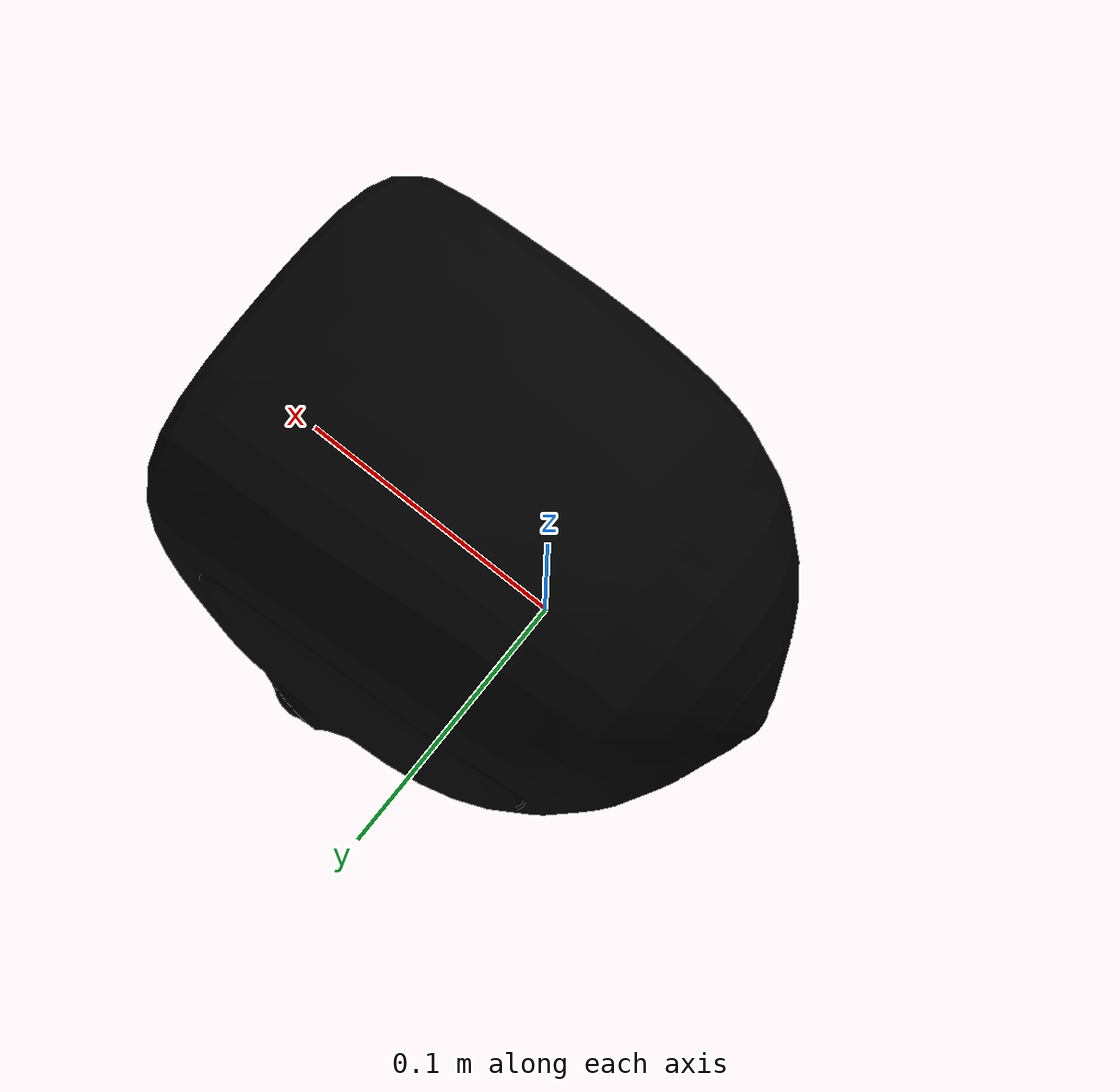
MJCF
<mujoco model="head_link3">
  <default>
    <default class="visual">
      <geom group="2" type="mesh" contype="0" conaffinity="0"/>
    </default>
    <default class="collision">
      <geom group="3" type="mesh"/>
    </default>
  </default>
  <asset>
    <material name="material_head_link3_0" specular="0.20000000000000004" shininess="1.0" rgba="0.00000000 0.00000000 0.00000000 1.0"/>
    <material name="material_head_link3_1" specular="0.20000000000000004" shininess="1.0" rgba="0.98039216 0.43137255 0.00000000 1.0"/>
    <mesh file="head_link3_0.obj"/>
    <mesh file="head_link3_1.obj"/>
  </asset>
  <worldbody>
    <body name="head_link3">
      <geom mesh="head_link3_0" material="material_head_link3_1" class="visual"/>
      <geom mesh="head_link3_1" material="material_head_link3_0" class="visual"/>
      <geom mesh="head_link3_0" class="collision"/>
      <geom mesh="head_link3_1" class="collision"/>
    </body>
  </worldbody>
</mujoco>
